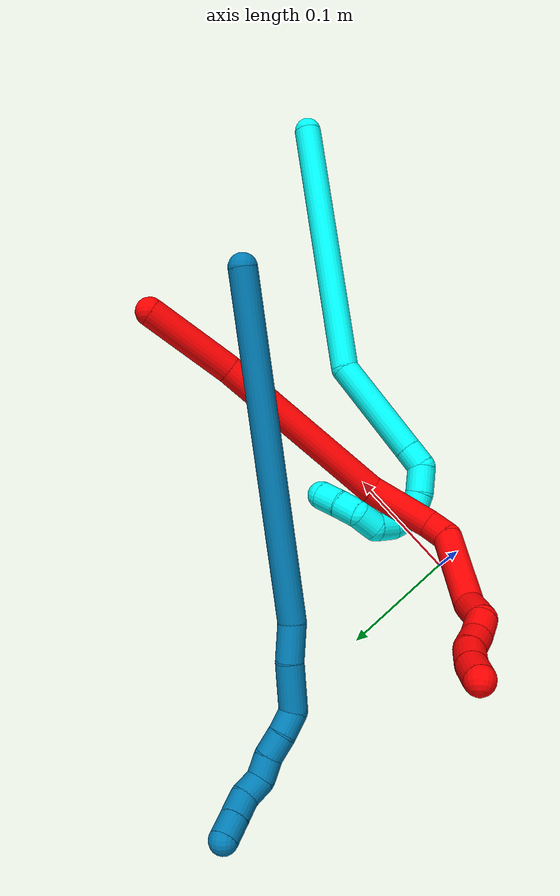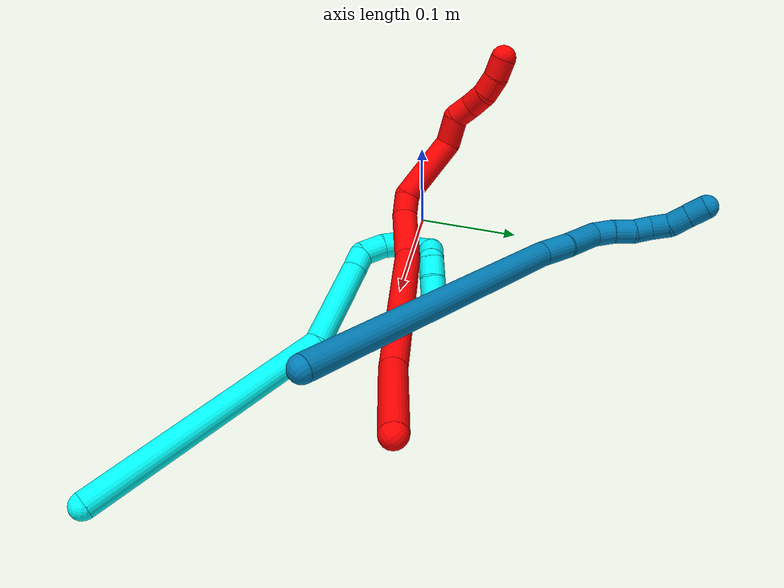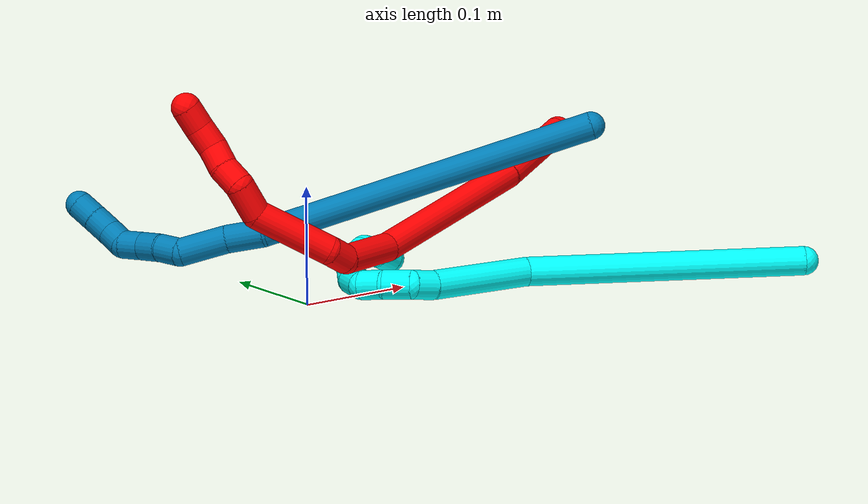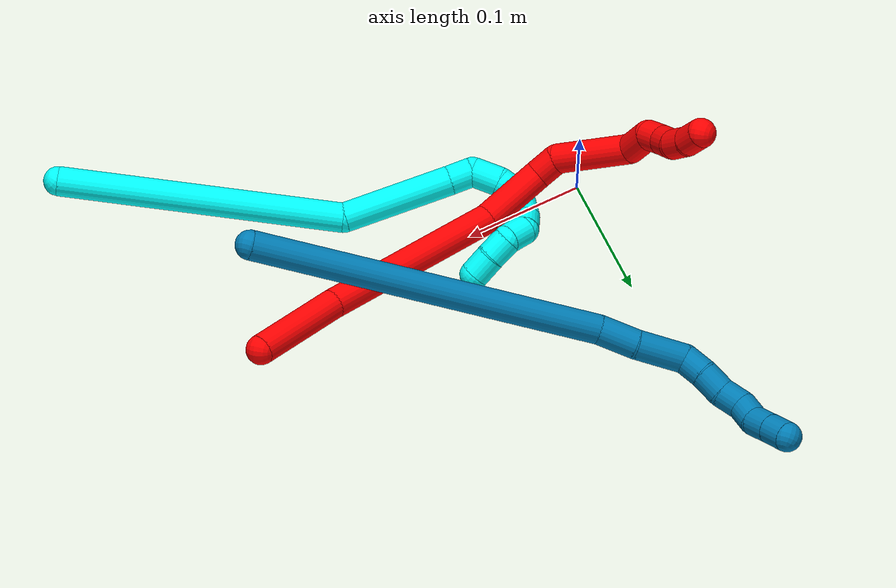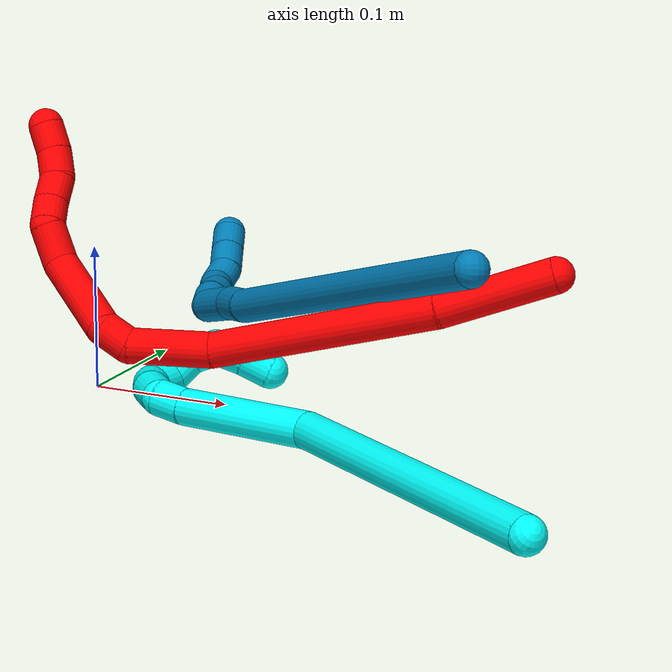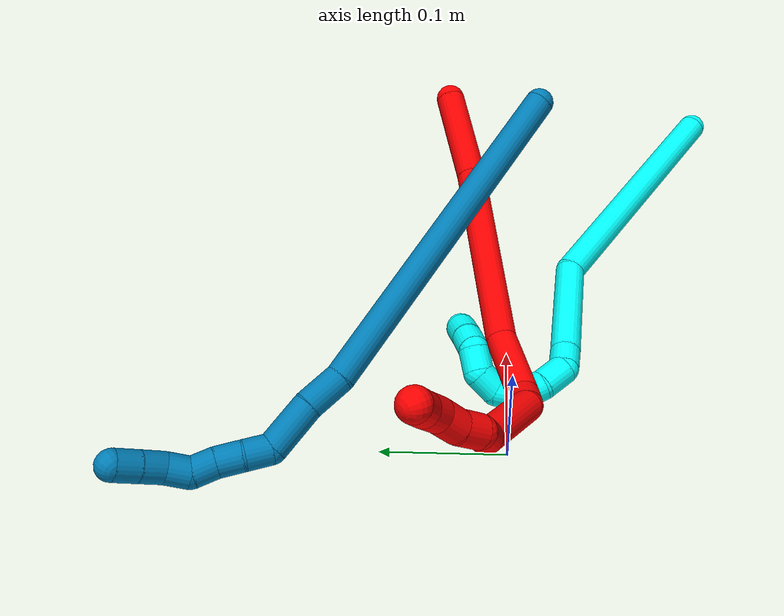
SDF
<sdf version="1.7">
 <world name="default">
  <model name="2">
   <static>0</static>
   <link name="2">
    <collision name="collision-cylinder-e_1_1_4">
     <pose>-0.0279 -0.027557 -0.011878 1.97777 -0.749013 -1.07707</pose>
     <geometry><cylinder><radius>0.0125</radius><length>0.081947</length></cylinder></geometry>
     <surface>
      <friction><ode><mu>1.16</mu><mu2>1.16</mu2><slip1>0</slip1><slip2>0</slip2></ode></friction>
      <contact><ode><kp>1e+06</kp><kd>1</kd><max_vel>0</max_vel><min_depth>0.001</min_depth></ode></contact>
     </surface>
    </collision>
    <visual name="visual-cylinder-e_1_1_4">
     <pose>-0.0279 -0.027557 -0.011878 1.97777 -0.749013 -1.07707</pose>
     <geometry><cylinder><radius>0.0125</radius><length>0.081947</length></cylinder></geometry>
     <material><ambient>1 0 0 1</ambient></material>
    </visual>
    <collision name="collision-cylinder-e_2_4_5">
     <pose>-0.110259 -0.104633 -0.056803 2.15926 -0.740907 -1.25607</pose>
     <geometry><cylinder><radius>0.0125</radius><length>0.161372</length></cylinder></geometry>
     <surface>
      <friction><ode><mu>1.16</mu><mu2>1.16</mu2><slip1>0</slip1><slip2>0</slip2></ode></friction>
      <contact><ode><kp>1e+06</kp><kd>1</kd><max_vel>0</max_vel><min_depth>0.001</min_depth></ode></contact>
     </surface>
    </collision>
    <visual name="visual-cylinder-e_2_4_5">
     <pose>-0.110259 -0.104633 -0.056803 2.15926 -0.740907 -1.25607</pose>
     <geometry><cylinder><radius>0.0125</radius><length>0.161372</length></cylinder></geometry>
     <material><ambient>1 0 0 1</ambient></material>
    </visual>
    <collision name="collision-cylinder-e_3_5_6">
     <pose>-0.188735 -0.165083 -0.101712 2.39711 -0.979389 -1.87712</pose>
     <geometry><cylinder><radius>0.0125</radius><length>0.05786</length></cylinder></geometry>
     <surface>
      <friction><ode><mu>1.16</mu><mu2>1.16</mu2><slip1>0</slip1><slip2>0</slip2></ode></friction>
      <contact><ode><kp>1e+06</kp><kd>1</kd><max_vel>0</max_vel><min_depth>0.001</min_depth></ode></contact>
     </surface>
    </collision>
    <visual name="visual-cylinder-e_3_5_6">
     <pose>-0.188735 -0.165083 -0.101712 2.39711 -0.979389 -1.87712</pose>
     <geometry><cylinder><radius>0.0125</radius><length>0.05786</length></cylinder></geometry>
     <material><ambient>1 0 0 1</ambient></material>
    </visual>
    <collision name="collision-cylinder-e_4_6_7">
     <pose>-0.220841 -0.174942 -0.120636 -2.99122 -0.847495 2.81065</pose>
     <geometry><cylinder><radius>0.0125</radius><length>0.021584</length></cylinder></geometry>
     <surface>
      <friction><ode><mu>1.16</mu><mu2>1.16</mu2><slip1>0</slip1><slip2>0</slip2></ode></friction>
      <contact><ode><kp>1e+06</kp><kd>1</kd><max_vel>0</max_vel><min_depth>0.001</min_depth></ode></contact>
     </surface>
    </collision>
    <visual name="visual-cylinder-e_4_6_7">
     <pose>-0.220841 -0.174942 -0.120636 -2.99122 -0.847495 2.81065</pose>
     <geometry><cylinder><radius>0.0125</radius><length>0.021584</length></cylinder></geometry>
     <material><ambient>1 0 0 1</ambient></material>
    </visual>
    <collision name="collision-cylinder-e_5_7_8">
     <pose>-0.238582 -0.170751 -0.160245 -3.04599 -0.287039 2.50224</pose>
     <geometry><cylinder><radius>0.0125</radius><length>0.068181</length></cylinder></geometry>
     <surface>
      <friction><ode><mu>1.16</mu><mu2>1.16</mu2><slip1>0</slip1><slip2>0</slip2></ode></friction>
      <contact><ode><kp>1e+06</kp><kd>1</kd><max_vel>0</max_vel><min_depth>0.001</min_depth></ode></contact>
     </surface>
    </collision>
    <visual name="visual-cylinder-e_5_7_8">
     <pose>-0.238582 -0.170751 -0.160245 -3.04599 -0.287039 2.50224</pose>
     <geometry><cylinder><radius>0.0125</radius><length>0.068181</length></cylinder></geometry>
     <material><ambient>1 0 0 1</ambient></material>
    </visual>
    <collision name="collision-cylinder-e_6_8_9">
     <pose>-0.25401 -0.159086 -0.202769 -2.43347 -0.414231 1.03383</pose>
     <geometry><cylinder><radius>0.0125</radius><length>0.0287</length></cylinder></geometry>
     <surface>
      <friction><ode><mu>1.16</mu><mu2>1.16</mu2><slip1>0</slip1><slip2>0</slip2></ode></friction>
      <contact><ode><kp>1e+06</kp><kd>1</kd><max_vel>0</max_vel><min_depth>0.001</min_depth></ode></contact>
     </surface>
    </collision>
    <visual name="visual-cylinder-e_6_8_9">
     <pose>-0.25401 -0.159086 -0.202769 -2.43347 -0.414231 1.03383</pose>
     <geometry><cylinder><radius>0.0125</radius><length>0.0287</length></cylinder></geometry>
     <material><ambient>1 0 0 1</ambient></material>
    </visual>
    <collision name="collision-cylinder-e_7_9_10">
     <pose>-0.258062 -0.146257 -0.221696 -2.69502 0.172028 -0.725832</pose>
     <geometry><cylinder><radius>0.0125</radius><length>0.020139</length></cylinder></geometry>
     <surface>
      <friction><ode><mu>1.16</mu><mu2>1.16</mu2><slip1>0</slip1><slip2>0</slip2></ode></friction>
      <contact><ode><kp>1e+06</kp><kd>1</kd><max_vel>0</max_vel><min_depth>0.001</min_depth></ode></contact>
     </surface>
    </collision>
    <visual name="visual-cylinder-e_7_9_10">
     <pose>-0.258062 -0.146257 -0.221696 -2.69502 0.172028 -0.725832</pose>
     <geometry><cylinder><radius>0.0125</radius><length>0.020139</length></cylinder></geometry>
     <material><ambient>1 0 0 1</ambient></material>
    </visual>
    <collision name="collision-cylinder-e_8_10_11">
     <pose>-0.25434 -0.135648 -0.238215 -2.44566 0.199815 -0.539251</pose>
     <geometry><cylinder><radius>0.0125</radius><length>0.020132</length></cylinder></geometry>
     <surface>
      <friction><ode><mu>1.16</mu><mu2>1.16</mu2><slip1>0</slip1><slip2>0</slip2></ode></friction>
      <contact><ode><kp>1e+06</kp><kd>1</kd><max_vel>0</max_vel><min_depth>0.001</min_depth></ode></contact>
     </surface>
    </collision>
    <visual name="visual-cylinder-e_8_10_11">
     <pose>-0.25434 -0.135648 -0.238215 -2.44566 0.199815 -0.539251</pose>
     <geometry><cylinder><radius>0.0125</radius><length>0.020132</length></cylinder></geometry>
     <material><ambient>1 0 0 1</ambient></material>
    </visual>
    <collision name="collision-cylinder-e_9_11_12">
     <pose>-0.253776 -0.12375 -0.253992 -2.54497 -0.143542 0.459375</pose>
     <geometry><cylinder><radius>0.0125</radius><length>0.020045</length></cylinder></geometry>
     <surface>
      <friction><ode><mu>1.16</mu><mu2>1.16</mu2><slip1>0</slip1><slip2>0</slip2></ode></friction>
      <contact><ode><kp>1e+06</kp><kd>1</kd><max_vel>0</max_vel><min_depth>0.001</min_depth></ode></contact>
     </surface>
    </collision>
    <visual name="visual-cylinder-e_9_11_12">
     <pose>-0.253776 -0.12375 -0.253992 -2.54497 -0.143542 0.459375</pose>
     <geometry><cylinder><radius>0.0125</radius><length>0.020045</length></cylinder></geometry>
     <material><ambient>1 0 0 1</ambient></material>
    </visual>
    <collision name="collision-cylinder-e_10_12_2">
     <pose>-0.258653 -0.112425 -0.269645 -2.48398 -0.350828 0.958193</pose>
     <geometry><cylinder><radius>0.0125</radius><length>0.020041</length></cylinder></geometry>
     <surface>
      <friction><ode><mu>1.16</mu><mu2>1.16</mu2><slip1>0</slip1><slip2>0</slip2></ode></friction>
      <contact><ode><kp>1e+06</kp><kd>1</kd><max_vel>0</max_vel><min_depth>0.001</min_depth></ode></contact>
     </surface>
    </collision>
    <visual name="visual-cylinder-e_10_12_2">
     <pose>-0.258653 -0.112425 -0.269645 -2.48398 -0.350828 0.958193</pose>
     <geometry><cylinder><radius>0.0125</radius><length>0.020041</length></cylinder></geometry>
     <material><ambient>1 0 0 1</ambient></material>
    </visual>
    <collision name="collision-sphere-2">
     <pose>-0.262097 -0.106673 -0.277093 0 -0 0</pose>
     <geometry><sphere><radius>0.0125</radius></sphere></geometry>
     <surface>
      <friction><ode><mu>1.16</mu><mu2>1.16</mu2><slip1>0</slip1><slip2>0</slip2></ode></friction>
      <contact><ode><kp>1e+06</kp><kd>1</kd><max_vel>0</max_vel><min_depth>0.001</min_depth></ode></contact>
     </surface>
    </collision>
    <visual name="visual-sphere-2">
     <pose>-0.262097 -0.106673 -0.277093 0 -0 0</pose>
     <geometry><sphere><radius>0.0125</radius></sphere></geometry>
     <material><ambient>1 0 0 1</ambient></material>
    </visual>
    <collision name="collision-sphere-12">
     <pose>-0.25521 -0.118177 -0.262197 0 -0 0</pose>
     <geometry><sphere><radius>0.0125</radius></sphere></geometry>
     <surface>
      <friction><ode><mu>1.16</mu><mu2>1.16</mu2><slip1>0</slip1><slip2>0</slip2></ode></friction>
      <contact><ode><kp>1e+06</kp><kd>1</kd><max_vel>0</max_vel><min_depth>0.001</min_depth></ode></contact>
     </surface>
    </collision>
    <visual name="visual-sphere-12">
     <pose>-0.25521 -0.118177 -0.262197 0 -0 0</pose>
     <geometry><sphere><radius>0.0125</radius></sphere></geometry>
     <material><ambient>1 0 0 1</ambient></material>
    </visual>
    <collision name="collision-sphere-11">
     <pose>-0.252342 -0.129323 -0.245786 0 -0 0</pose>
     <geometry><sphere><radius>0.0125</radius></sphere></geometry>
     <surface>
      <friction><ode><mu>1.16</mu><mu2>1.16</mu2><slip1>0</slip1><slip2>0</slip2></ode></friction>
      <contact><ode><kp>1e+06</kp><kd>1</kd><max_vel>0</max_vel><min_depth>0.001</min_depth></ode></contact>
     </surface>
    </collision>
    <visual name="visual-sphere-11">
     <pose>-0.252342 -0.129323 -0.245786 0 -0 0</pose>
     <geometry><sphere><radius>0.0125</radius></sphere></geometry>
     <material><ambient>1 0 0 1</ambient></material>
    </visual>
    <collision name="collision-sphere-10">
     <pose>-0.256338 -0.141973 -0.230643 0 -0 0</pose>
     <geometry><sphere><radius>0.0125</radius></sphere></geometry>
     <surface>
      <friction><ode><mu>1.16</mu><mu2>1.16</mu2><slip1>0</slip1><slip2>0</slip2></ode></friction>
      <contact><ode><kp>1e+06</kp><kd>1</kd><max_vel>0</max_vel><min_depth>0.001</min_depth></ode></contact>
     </surface>
    </collision>
    <visual name="visual-sphere-10">
     <pose>-0.256338 -0.141973 -0.230643 0 -0 0</pose>
     <geometry><sphere><radius>0.0125</radius></sphere></geometry>
     <material><ambient>1 0 0 1</ambient></material>
    </visual>
    <collision name="collision-sphere-9">
     <pose>-0.259785 -0.150542 -0.212748 0 -0 0</pose>
     <geometry><sphere><radius>0.0125</radius></sphere></geometry>
     <surface>
      <friction><ode><mu>1.16</mu><mu2>1.16</mu2><slip1>0</slip1><slip2>0</slip2></ode></friction>
      <contact><ode><kp>1e+06</kp><kd>1</kd><max_vel>0</max_vel><min_depth>0.001</min_depth></ode></contact>
     </surface>
    </collision>
    <visual name="visual-sphere-9">
     <pose>-0.259785 -0.150542 -0.212748 0 -0 0</pose>
     <geometry><sphere><radius>0.0125</radius></sphere></geometry>
     <material><ambient>1 0 0 1</ambient></material>
    </visual>
    <collision name="collision-sphere-4">
     <pose>-0.055799 -0.055113 -0.023756 0 -0 0</pose>
     <geometry><sphere><radius>0.0125</radius></sphere></geometry>
     <surface>
      <friction><ode><mu>1.16</mu><mu2>1.16</mu2><slip1>0</slip1><slip2>0</slip2></ode></friction>
      <contact><ode><kp>1e+06</kp><kd>1</kd><max_vel>0</max_vel><min_depth>0.001</min_depth></ode></contact>
     </surface>
    </collision>
    <visual name="visual-sphere-4">
     <pose>-0.055799 -0.055113 -0.023756 0 -0 0</pose>
     <geometry><sphere><radius>0.0125</radius></sphere></geometry>
     <material><ambient>1 0 0 1</ambient></material>
    </visual>
    <collision name="collision-sphere-1">
     <geometry><sphere><radius>0.0125</radius></sphere></geometry>
     <surface>
      <friction><ode><mu>1.16</mu><mu2>1.16</mu2><slip1>0</slip1><slip2>0</slip2></ode></friction>
      <contact><ode><kp>1e+06</kp><kd>1</kd><max_vel>0</max_vel><min_depth>0.001</min_depth></ode></contact>
     </surface>
    </collision>
    <visual name="visual-sphere-1">
     <geometry><sphere><radius>0.0125</radius></sphere></geometry>
     <material><ambient>1 0 0 1</ambient></material>
    </visual>
    <collision name="collision-sphere-8">
     <pose>-0.248234 -0.16763 -0.192791 0 -0 0</pose>
     <geometry><sphere><radius>0.0125</radius></sphere></geometry>
     <surface>
      <friction><ode><mu>1.16</mu><mu2>1.16</mu2><slip1>0</slip1><slip2>0</slip2></ode></friction>
      <contact><ode><kp>1e+06</kp><kd>1</kd><max_vel>0</max_vel><min_depth>0.001</min_depth></ode></contact>
     </surface>
    </collision>
    <visual name="visual-sphere-8">
     <pose>-0.248234 -0.16763 -0.192791 0 -0 0</pose>
     <geometry><sphere><radius>0.0125</radius></sphere></geometry>
     <material><ambient>1 0 0 1</ambient></material>
    </visual>
    <collision name="collision-sphere-5">
     <pose>-0.164718 -0.154154 -0.08985 0 -0 0</pose>
     <geometry><sphere><radius>0.0125</radius></sphere></geometry>
     <surface>
      <friction><ode><mu>1.16</mu><mu2>1.16</mu2><slip1>0</slip1><slip2>0</slip2></ode></friction>
      <contact><ode><kp>1e+06</kp><kd>1</kd><max_vel>0</max_vel><min_depth>0.001</min_depth></ode></contact>
     </surface>
    </collision>
    <visual name="visual-sphere-5">
     <pose>-0.164718 -0.154154 -0.08985 0 -0 0</pose>
     <geometry><sphere><radius>0.0125</radius></sphere></geometry>
     <material><ambient>1 0 0 1</ambient></material>
    </visual>
    <collision name="collision-sphere-6">
     <pose>-0.212751 -0.176012 -0.113574 0 -0 0</pose>
     <geometry><sphere><radius>0.0125</radius></sphere></geometry>
     <surface>
      <friction><ode><mu>1.16</mu><mu2>1.16</mu2><slip1>0</slip1><slip2>0</slip2></ode></friction>
      <contact><ode><kp>1e+06</kp><kd>1</kd><max_vel>0</max_vel><min_depth>0.001</min_depth></ode></contact>
     </surface>
    </collision>
    <visual name="visual-sphere-6">
     <pose>-0.212751 -0.176012 -0.113574 0 -0 0</pose>
     <geometry><sphere><radius>0.0125</radius></sphere></geometry>
     <material><ambient>1 0 0 1</ambient></material>
    </visual>
    <collision name="collision-sphere-7">
     <pose>-0.228931 -0.173872 -0.127698 0 -0 0</pose>
     <geometry><sphere><radius>0.0125</radius></sphere></geometry>
     <surface>
      <friction><ode><mu>1.16</mu><mu2>1.16</mu2><slip1>0</slip1><slip2>0</slip2></ode></friction>
      <contact><ode><kp>1e+06</kp><kd>1</kd><max_vel>0</max_vel><min_depth>0.001</min_depth></ode></contact>
     </surface>
    </collision>
    <visual name="visual-sphere-7">
     <pose>-0.228931 -0.173872 -0.127698 0 -0 0</pose>
     <geometry><sphere><radius>0.0125</radius></sphere></geometry>
     <material><ambient>1 0 0 1</ambient></material>
    </visual>
    <inertial>
     <pose>-0.159821 -0.118177 -0.110258 0 -0 0</pose>
     <mass>0.5</mass>
     <inertia>
      <ixx>-0.000215</ixx>
      <ixy>0</ixy>
      <ixz>0</ixz>
      <iyy>-9.8e-05</iyy>
      <iyz>0</iyz>
      <izz>0.000529</izz>
     </inertia>
    </inertial>
   </link>
   <pose>0.315631 0.052836 0.102913 1.92021 0.263843 0.833258</pose>
  </model>
  <model name="3">
   <static>0</static>
   <link name="3">
    <collision name="collision-cylinder-e_1_1_4">
     <pose>-0.059333 0.039546 -0.096728 -2.75349 -0.516394 1.8621</pose>
     <geometry><cylinder><radius>0.0125</radius><length>0.240338</length></cylinder></geometry>
     <surface>
      <friction><ode><mu>1.16</mu><mu2>1.16</mu2><slip1>0</slip1><slip2>0</slip2></ode></friction>
      <contact><ode><kp>1e+06</kp><kd>1</kd><max_vel>0</max_vel><min_depth>0.001</min_depth></ode></contact>
     </surface>
    </collision>
    <visual name="visual-cylinder-e_1_1_4">
     <pose>-0.059333 0.039546 -0.096728 -2.75349 -0.516394 1.8621</pose>
     <geometry><cylinder><radius>0.0125</radius><length>0.240338</length></cylinder></geometry>
     <material><ambient>0.003922 1 0.996078 1</ambient></material>
    </visual>
    <collision name="collision-cylinder-e_2_4_5">
     <pose>-0.154098 0.076052 -0.224626 3.04438 -0.846941 -2.92659</pose>
     <geometry><cylinder><radius>0.0125</radius><length>0.094578</length></cylinder></geometry>
     <surface>
      <friction><ode><mu>1.16</mu><mu2>1.16</mu2><slip1>0</slip1><slip2>0</slip2></ode></friction>
      <contact><ode><kp>1e+06</kp><kd>1</kd><max_vel>0</max_vel><min_depth>0.001</min_depth></ode></contact>
     </surface>
    </collision>
    <visual name="visual-cylinder-e_2_4_5">
     <pose>-0.154098 0.076052 -0.224626 3.04438 -0.846941 -2.92659</pose>
     <geometry><cylinder><radius>0.0125</radius><length>0.094578</length></cylinder></geometry>
     <material><ambient>0.003922 1 0.996078 1</ambient></material>
    </visual>
    <collision name="collision-cylinder-e_3_5_6">
     <pose>-0.197849 0.073395 -0.26177 -3.07773 -0.947132 3.01708</pose>
     <geometry><cylinder><radius>0.0125</radius><length>0.020499</length></cylinder></geometry>
     <surface>
      <friction><ode><mu>1.16</mu><mu2>1.16</mu2><slip1>0</slip1><slip2>0</slip2></ode></friction>
      <contact><ode><kp>1e+06</kp><kd>1</kd><max_vel>0</max_vel><min_depth>0.001</min_depth></ode></contact>
     </surface>
    </collision>
    <visual name="visual-cylinder-e_3_5_6">
     <pose>-0.197849 0.073395 -0.26177 -3.07773 -0.947132 3.01708</pose>
     <geometry><cylinder><radius>0.0125</radius><length>0.020499</length></cylinder></geometry>
     <material><ambient>0.003922 1 0.996078 1</ambient></material>
    </visual>
    <collision name="collision-cylinder-e_4_6_7">
     <pose>-0.210015 0.07979 -0.277556 -2.59176 -0.322499 1.04621</pose>
     <geometry><cylinder><radius>0.0125</radius><length>0.024268</length></cylinder></geometry>
     <surface>
      <friction><ode><mu>1.16</mu><mu2>1.16</mu2><slip1>0</slip1><slip2>0</slip2></ode></friction>
      <contact><ode><kp>1e+06</kp><kd>1</kd><max_vel>0</max_vel><min_depth>0.001</min_depth></ode></contact>
     </surface>
    </collision>
    <visual name="visual-cylinder-e_4_6_7">
     <pose>-0.210015 0.07979 -0.277556 -2.59176 -0.322499 1.04621</pose>
     <geometry><cylinder><radius>0.0125</radius><length>0.024268</length></cylinder></geometry>
     <material><ambient>0.003922 1 0.996078 1</ambient></material>
    </visual>
    <collision name="collision-cylinder-e_5_7_8">
     <pose>-0.214647 0.091779 -0.295388 -2.50121 -0.078482 0.235697</pose>
     <geometry><cylinder><radius>0.0125</radius><length>0.020064</length></cylinder></geometry>
     <surface>
      <friction><ode><mu>1.16</mu><mu2>1.16</mu2><slip1>0</slip1><slip2>0</slip2></ode></friction>
      <contact><ode><kp>1e+06</kp><kd>1</kd><max_vel>0</max_vel><min_depth>0.001</min_depth></ode></contact>
     </surface>
    </collision>
    <visual name="visual-cylinder-e_5_7_8">
     <pose>-0.214647 0.091779 -0.295388 -2.50121 -0.078482 0.235697</pose>
     <geometry><cylinder><radius>0.0125</radius><length>0.020064</length></cylinder></geometry>
     <material><ambient>0.003922 1 0.996078 1</ambient></material>
    </visual>
    <collision name="collision-cylinder-e_6_8_9">
     <pose>-0.211374 0.106343 -0.306845 -1.95152 0.413553 -0.601061</pose>
     <geometry><cylinder><radius>0.0125</radius><length>0.020205</length></cylinder></geometry>
     <surface>
      <friction><ode><mu>1.16</mu><mu2>1.16</mu2><slip1>0</slip1><slip2>0</slip2></ode></friction>
      <contact><ode><kp>1e+06</kp><kd>1</kd><max_vel>0</max_vel><min_depth>0.001</min_depth></ode></contact>
     </surface>
    </collision>
    <visual name="visual-cylinder-e_6_8_9">
     <pose>-0.211374 0.106343 -0.306845 -1.95152 0.413553 -0.601061</pose>
     <geometry><cylinder><radius>0.0125</radius><length>0.020205</length></cylinder></geometry>
     <material><ambient>0.003922 1 0.996078 1</ambient></material>
    </visual>
    <collision name="collision-cylinder-e_7_9_10">
     <pose>-0.20579 0.124477 -0.307705 -1.30711 0.152984 -0.117254</pose>
     <geometry><cylinder><radius>0.0125</radius><length>0.020008</length></cylinder></geometry>
     <surface>
      <friction><ode><mu>1.16</mu><mu2>1.16</mu2><slip1>0</slip1><slip2>0</slip2></ode></friction>
      <contact><ode><kp>1e+06</kp><kd>1</kd><max_vel>0</max_vel><min_depth>0.001</min_depth></ode></contact>
     </surface>
    </collision>
    <visual name="visual-cylinder-e_7_9_10">
     <pose>-0.20579 0.124477 -0.307705 -1.30711 0.152984 -0.117254</pose>
     <geometry><cylinder><radius>0.0125</radius><length>0.020008</length></cylinder></geometry>
     <material><ambient>0.003922 1 0.996078 1</ambient></material>
    </visual>
    <collision name="collision-cylinder-e_8_10_11">
     <pose>-0.199009 0.139217 -0.29837 -0.655389 0.552633 -0.192206</pose>
     <geometry><cylinder><radius>0.0125</radius><length>0.020029</length></cylinder></geometry>
     <surface>
      <friction><ode><mu>1.16</mu><mu2>1.16</mu2><slip1>0</slip1><slip2>0</slip2></ode></friction>
      <contact><ode><kp>1e+06</kp><kd>1</kd><max_vel>0</max_vel><min_depth>0.001</min_depth></ode></contact>
     </surface>
    </collision>
    <visual name="visual-cylinder-e_8_10_11">
     <pose>-0.199009 0.139217 -0.29837 -0.655389 0.552633 -0.192206</pose>
     <geometry><cylinder><radius>0.0125</radius><length>0.020029</length></cylinder></geometry>
     <material><ambient>0.003922 1 0.996078 1</ambient></material>
    </visual>
    <collision name="collision-cylinder-e_9_11_12">
     <pose>-0.184198 0.14627 -0.289303 -0.677501 1.26997 -0.507969</pose>
     <geometry><cylinder><radius>0.0125</radius><length>0.020007</length></cylinder></geometry>
     <surface>
      <friction><ode><mu>1.16</mu><mu2>1.16</mu2><slip1>0</slip1><slip2>0</slip2></ode></friction>
      <contact><ode><kp>1e+06</kp><kd>1</kd><max_vel>0</max_vel><min_depth>0.001</min_depth></ode></contact>
     </surface>
    </collision>
    <visual name="visual-cylinder-e_9_11_12">
     <pose>-0.184198 0.14627 -0.289303 -0.677501 1.26997 -0.507969</pose>
     <geometry><cylinder><radius>0.0125</radius><length>0.020007</length></cylinder></geometry>
     <material><ambient>0.003922 1 0.996078 1</ambient></material>
    </visual>
    <collision name="collision-cylinder-e_10_12_2">
     <pose>-0.164799 0.149229 -0.285603 -0.669433 1.39251 -0.565865</pose>
     <geometry><cylinder><radius>0.0125</radius><length>0.020006</length></cylinder></geometry>
     <surface>
      <friction><ode><mu>1.16</mu><mu2>1.16</mu2><slip1>0</slip1><slip2>0</slip2></ode></friction>
      <contact><ode><kp>1e+06</kp><kd>1</kd><max_vel>0</max_vel><min_depth>0.001</min_depth></ode></contact>
     </surface>
    </collision>
    <visual name="visual-cylinder-e_10_12_2">
     <pose>-0.164799 0.149229 -0.285603 -0.669433 1.39251 -0.565865</pose>
     <geometry><cylinder><radius>0.0125</radius><length>0.020006</length></cylinder></geometry>
     <material><ambient>0.003922 1 0.996078 1</ambient></material>
    </visual>
    <collision name="collision-sphere-2">
     <pose>-0.154955 0.15033 -0.284212 0 -0 0</pose>
     <geometry><sphere><radius>0.0125</radius></sphere></geometry>
     <surface>
      <friction><ode><mu>1.16</mu><mu2>1.16</mu2><slip1>0</slip1><slip2>0</slip2></ode></friction>
      <contact><ode><kp>1e+06</kp><kd>1</kd><max_vel>0</max_vel><min_depth>0.001</min_depth></ode></contact>
     </surface>
    </collision>
    <visual name="visual-sphere-2">
     <pose>-0.154955 0.15033 -0.284212 0 -0 0</pose>
     <geometry><sphere><radius>0.0125</radius></sphere></geometry>
     <material><ambient>0.003922 1 0.996078 1</ambient></material>
    </visual>
    <collision name="collision-sphere-12">
     <pose>-0.174644 0.148128 -0.286994 0 -0 0</pose>
     <geometry><sphere><radius>0.0125</radius></sphere></geometry>
     <surface>
      <friction><ode><mu>1.16</mu><mu2>1.16</mu2><slip1>0</slip1><slip2>0</slip2></ode></friction>
      <contact><ode><kp>1e+06</kp><kd>1</kd><max_vel>0</max_vel><min_depth>0.001</min_depth></ode></contact>
     </surface>
    </collision>
    <visual name="visual-sphere-12">
     <pose>-0.174644 0.148128 -0.286994 0 -0 0</pose>
     <geometry><sphere><radius>0.0125</radius></sphere></geometry>
     <material><ambient>0.003922 1 0.996078 1</ambient></material>
    </visual>
    <collision name="collision-sphere-11">
     <pose>-0.193752 0.144412 -0.291613 0 -0 0</pose>
     <geometry><sphere><radius>0.0125</radius></sphere></geometry>
     <surface>
      <friction><ode><mu>1.16</mu><mu2>1.16</mu2><slip1>0</slip1><slip2>0</slip2></ode></friction>
      <contact><ode><kp>1e+06</kp><kd>1</kd><max_vel>0</max_vel><min_depth>0.001</min_depth></ode></contact>
     </surface>
    </collision>
    <visual name="visual-sphere-11">
     <pose>-0.193752 0.144412 -0.291613 0 -0 0</pose>
     <geometry><sphere><radius>0.0125</radius></sphere></geometry>
     <material><ambient>0.003922 1 0.996078 1</ambient></material>
    </visual>
    <collision name="collision-sphere-10">
     <pose>-0.204265 0.134022 -0.305128 0 -0 0</pose>
     <geometry><sphere><radius>0.0125</radius></sphere></geometry>
     <surface>
      <friction><ode><mu>1.16</mu><mu2>1.16</mu2><slip1>0</slip1><slip2>0</slip2></ode></friction>
      <contact><ode><kp>1e+06</kp><kd>1</kd><max_vel>0</max_vel><min_depth>0.001</min_depth></ode></contact>
     </surface>
    </collision>
    <visual name="visual-sphere-10">
     <pose>-0.204265 0.134022 -0.305128 0 -0 0</pose>
     <geometry><sphere><radius>0.0125</radius></sphere></geometry>
     <material><ambient>0.003922 1 0.996078 1</ambient></material>
    </visual>
    <collision name="collision-sphere-9">
     <pose>-0.207314 0.114932 -0.310282 0 -0 0</pose>
     <geometry><sphere><radius>0.0125</radius></sphere></geometry>
     <surface>
      <friction><ode><mu>1.16</mu><mu2>1.16</mu2><slip1>0</slip1><slip2>0</slip2></ode></friction>
      <contact><ode><kp>1e+06</kp><kd>1</kd><max_vel>0</max_vel><min_depth>0.001</min_depth></ode></contact>
     </surface>
    </collision>
    <visual name="visual-sphere-9">
     <pose>-0.207314 0.114932 -0.310282 0 -0 0</pose>
     <geometry><sphere><radius>0.0125</radius></sphere></geometry>
     <material><ambient>0.003922 1 0.996078 1</ambient></material>
    </visual>
    <collision name="collision-sphere-4">
     <pose>-0.118666 0.079092 -0.193456 0 -0 0</pose>
     <geometry><sphere><radius>0.0125</radius></sphere></geometry>
     <surface>
      <friction><ode><mu>1.16</mu><mu2>1.16</mu2><slip1>0</slip1><slip2>0</slip2></ode></friction>
      <contact><ode><kp>1e+06</kp><kd>1</kd><max_vel>0</max_vel><min_depth>0.001</min_depth></ode></contact>
     </surface>
    </collision>
    <visual name="visual-sphere-4">
     <pose>-0.118666 0.079092 -0.193456 0 -0 0</pose>
     <geometry><sphere><radius>0.0125</radius></sphere></geometry>
     <material><ambient>0.003922 1 0.996078 1</ambient></material>
    </visual>
    <collision name="collision-sphere-1">
     <geometry><sphere><radius>0.0125</radius></sphere></geometry>
     <surface>
      <friction><ode><mu>1.16</mu><mu2>1.16</mu2><slip1>0</slip1><slip2>0</slip2></ode></friction>
      <contact><ode><kp>1e+06</kp><kd>1</kd><max_vel>0</max_vel><min_depth>0.001</min_depth></ode></contact>
     </surface>
    </collision>
    <visual name="visual-sphere-1">
     <geometry><sphere><radius>0.0125</radius></sphere></geometry>
     <material><ambient>0.003922 1 0.996078 1</ambient></material>
    </visual>
    <collision name="collision-sphere-8">
     <pose>-0.215434 0.097755 -0.303407 0 -0 0</pose>
     <geometry><sphere><radius>0.0125</radius></sphere></geometry>
     <surface>
      <friction><ode><mu>1.16</mu><mu2>1.16</mu2><slip1>0</slip1><slip2>0</slip2></ode></friction>
      <contact><ode><kp>1e+06</kp><kd>1</kd><max_vel>0</max_vel><min_depth>0.001</min_depth></ode></contact>
     </surface>
    </collision>
    <visual name="visual-sphere-8">
     <pose>-0.215434 0.097755 -0.303407 0 -0 0</pose>
     <geometry><sphere><radius>0.0125</radius></sphere></geometry>
     <material><ambient>0.003922 1 0.996078 1</ambient></material>
    </visual>
    <collision name="collision-sphere-5">
     <pose>-0.189529 0.073012 -0.255797 0 -0 0</pose>
     <geometry><sphere><radius>0.0125</radius></sphere></geometry>
     <surface>
      <friction><ode><mu>1.16</mu><mu2>1.16</mu2><slip1>0</slip1><slip2>0</slip2></ode></friction>
      <contact><ode><kp>1e+06</kp><kd>1</kd><max_vel>0</max_vel><min_depth>0.001</min_depth></ode></contact>
     </surface>
    </collision>
    <visual name="visual-sphere-5">
     <pose>-0.189529 0.073012 -0.255797 0 -0 0</pose>
     <geometry><sphere><radius>0.0125</radius></sphere></geometry>
     <material><ambient>0.003922 1 0.996078 1</ambient></material>
    </visual>
    <collision name="collision-sphere-6">
     <pose>-0.20617 0.073777 -0.267744 0 -0 0</pose>
     <geometry><sphere><radius>0.0125</radius></sphere></geometry>
     <surface>
      <friction><ode><mu>1.16</mu><mu2>1.16</mu2><slip1>0</slip1><slip2>0</slip2></ode></friction>
      <contact><ode><kp>1e+06</kp><kd>1</kd><max_vel>0</max_vel><min_depth>0.001</min_depth></ode></contact>
     </surface>
    </collision>
    <visual name="visual-sphere-6">
     <pose>-0.20617 0.073777 -0.267744 0 -0 0</pose>
     <geometry><sphere><radius>0.0125</radius></sphere></geometry>
     <material><ambient>0.003922 1 0.996078 1</ambient></material>
    </visual>
    <collision name="collision-sphere-7">
     <pose>-0.213861 0.085804 -0.287368 0 -0 0</pose>
     <geometry><sphere><radius>0.0125</radius></sphere></geometry>
     <surface>
      <friction><ode><mu>1.16</mu><mu2>1.16</mu2><slip1>0</slip1><slip2>0</slip2></ode></friction>
      <contact><ode><kp>1e+06</kp><kd>1</kd><max_vel>0</max_vel><min_depth>0.001</min_depth></ode></contact>
     </surface>
    </collision>
    <visual name="visual-sphere-7">
     <pose>-0.213861 0.085804 -0.287368 0 -0 0</pose>
     <geometry><sphere><radius>0.0125</radius></sphere></geometry>
     <material><ambient>0.003922 1 0.996078 1</ambient></material>
    </visual>
    <inertial>
     <pose>-0.123299 0.070638 -0.184708 0 -0 0</pose>
     <mass>0.5</mass>
     <inertia>
      <ixx>0.000616</ixx>
      <ixy>0</ixy>
      <ixz>0</ixz>
      <iyy>0.00157</iyy>
      <iyz>0</iyz>
      <izz>0.000222</izz>
     </inertia>
    </inertial>
   </link>
   <pose>0.388527 -0.190864 0.017038 0.722243 0.627272 0.304943</pose>
  </model>
  <model name="9">
   <static>0</static>
   <link name="9">
    <collision name="collision-cylinder-e_1_1_4">
     <pose>-0.110104 0.100355 -0.022087 -1.78743 -0.819901 0.991223</pose>
     <geometry><cylinder><radius>0.0125</radius><length>0.30121</length></cylinder></geometry>
     <surface>
      <friction><ode><mu>1.16</mu><mu2>1.16</mu2><slip1>0</slip1><slip2>0</slip2></ode></friction>
      <contact><ode><kp>1e+06</kp><kd>1</kd><max_vel>0</max_vel><min_depth>0.001</min_depth></ode></contact>
     </surface>
    </collision>
    <visual name="visual-cylinder-e_1_1_4">
     <pose>-0.110104 0.100355 -0.022087 -1.78743 -0.819901 0.991223</pose>
     <geometry><cylinder><radius>0.0125</radius><length>0.30121</length></cylinder></geometry>
     <material><ambient>0 0.490196 0.709804 1</ambient></material>
    </visual>
    <collision name="collision-cylinder-e_2_4_5">
     <pose>-0.233936 0.210144 -0.043557 -1.50549 -0.967704 0.914891</pose>
     <geometry><cylinder><radius>0.0125</radius><length>0.033336</length></cylinder></geometry>
     <surface>
      <friction><ode><mu>1.16</mu><mu2>1.16</mu2><slip1>0</slip1><slip2>0</slip2></ode></friction>
      <contact><ode><kp>1e+06</kp><kd>1</kd><max_vel>0</max_vel><min_depth>0.001</min_depth></ode></contact>
     </surface>
    </collision>
    <visual name="visual-cylinder-e_2_4_5">
     <pose>-0.233936 0.210144 -0.043557 -1.50549 -0.967704 0.914891</pose>
     <geometry><cylinder><radius>0.0125</radius><length>0.033336</length></cylinder></geometry>
     <material><ambient>0 0.490196 0.709804 1</ambient></material>
    </visual>
    <collision name="collision-cylinder-e_3_5_6">
     <pose>-0.263906 0.233366 -0.044842 -1.70785 -0.862274 0.971273</pose>
     <geometry><cylinder><radius>0.0125</radius><length>0.042782</length></cylinder></geometry>
     <surface>
      <friction><ode><mu>1.16</mu><mu2>1.16</mu2><slip1>0</slip1><slip2>0</slip2></ode></friction>
      <contact><ode><kp>1e+06</kp><kd>1</kd><max_vel>0</max_vel><min_depth>0.001</min_depth></ode></contact>
     </surface>
    </collision>
    <visual name="visual-cylinder-e_3_5_6">
     <pose>-0.263906 0.233366 -0.044842 -1.70785 -0.862274 0.971273</pose>
     <geometry><cylinder><radius>0.0125</radius><length>0.042782</length></cylinder></geometry>
     <material><ambient>0 0.490196 0.709804 1</ambient></material>
    </visual>
    <collision name="collision-cylinder-e_4_6_7">
     <pose>-0.289365 0.249888 -0.042478 -0.569809 -1.06817 0.343015</pose>
     <geometry><cylinder><radius>0.0125</radius><length>0.021035</length></cylinder></geometry>
     <surface>
      <friction><ode><mu>1.16</mu><mu2>1.16</mu2><slip1>0</slip1><slip2>0</slip2></ode></friction>
      <contact><ode><kp>1e+06</kp><kd>1</kd><max_vel>0</max_vel><min_depth>0.001</min_depth></ode></contact>
     </surface>
    </collision>
    <visual name="visual-cylinder-e_4_6_7">
     <pose>-0.289365 0.249888 -0.042478 -0.569809 -1.06817 0.343015</pose>
     <geometry><cylinder><radius>0.0125</radius><length>0.021035</length></cylinder></geometry>
     <material><ambient>0 0.490196 0.709804 1</ambient></material>
    </visual>
    <collision name="collision-cylinder-e_5_7_8">
     <pose>-0.307001 0.256427 -0.032907 -0.622282 -0.91121 0.312576</pose>
     <geometry><cylinder><radius>0.0125</radius><length>0.021308</length></cylinder></geometry>
     <surface>
      <friction><ode><mu>1.16</mu><mu2>1.16</mu2><slip1>0</slip1><slip2>0</slip2></ode></friction>
      <contact><ode><kp>1e+06</kp><kd>1</kd><max_vel>0</max_vel><min_depth>0.001</min_depth></ode></contact>
     </surface>
    </collision>
    <visual name="visual-cylinder-e_5_7_8">
     <pose>-0.307001 0.256427 -0.032907 -0.622282 -0.91121 0.312576</pose>
     <geometry><cylinder><radius>0.0125</radius><length>0.021308</length></cylinder></geometry>
     <material><ambient>0 0.490196 0.709804 1</ambient></material>
    </visual>
    <collision name="collision-cylinder-e_6_8_9">
     <pose>-0.324278 0.263928 -0.024688 -0.903039 -1.08245 0.567265</pose>
     <geometry><cylinder><radius>0.0125</radius><length>0.020061</length></cylinder></geometry>
     <surface>
      <friction><ode><mu>1.16</mu><mu2>1.16</mu2><slip1>0</slip1><slip2>0</slip2></ode></friction>
      <contact><ode><kp>1e+06</kp><kd>1</kd><max_vel>0</max_vel><min_depth>0.001</min_depth></ode></contact>
     </surface>
    </collision>
    <visual name="visual-cylinder-e_6_8_9">
     <pose>-0.324278 0.263928 -0.024688 -0.903039 -1.08245 0.567265</pose>
     <geometry><cylinder><radius>0.0125</radius><length>0.020061</length></cylinder></geometry>
     <material><ambient>0 0.490196 0.709804 1</ambient></material>
    </visual>
    <collision name="collision-cylinder-e_7_9_10">
     <pose>-0.341197 0.266329 -0.015883 0.216269 -0.928451 -0.108608</pose>
     <geometry><cylinder><radius>0.0125</radius><length>0.020135</length></cylinder></geometry>
     <surface>
      <friction><ode><mu>1.16</mu><mu2>1.16</mu2><slip1>0</slip1><slip2>0</slip2></ode></friction>
      <contact><ode><kp>1e+06</kp><kd>1</kd><max_vel>0</max_vel><min_depth>0.001</min_depth></ode></contact>
     </surface>
    </collision>
    <visual name="visual-cylinder-e_7_9_10">
     <pose>-0.341197 0.266329 -0.015883 0.216269 -0.928451 -0.108608</pose>
     <geometry><cylinder><radius>0.0125</radius><length>0.020135</length></cylinder></geometry>
     <material><ambient>0 0.490196 0.709804 1</ambient></material>
    </visual>
    <collision name="collision-cylinder-e_8_10_11">
     <pose>-0.358635 0.262779 -0.007157 0.671852 -1.20206 -0.469957</pose>
     <geometry><cylinder><radius>0.0125</radius><length>0.020104</length></cylinder></geometry>
     <surface>
      <friction><ode><mu>1.16</mu><mu2>1.16</mu2><slip1>0</slip1><slip2>0</slip2></ode></friction>
      <contact><ode><kp>1e+06</kp><kd>1</kd><max_vel>0</max_vel><min_depth>0.001</min_depth></ode></contact>
     </surface>
    </collision>
    <visual name="visual-cylinder-e_8_10_11">
     <pose>-0.358635 0.262779 -0.007157 0.671852 -1.20206 -0.469957</pose>
     <geometry><cylinder><radius>0.0125</radius><length>0.020104</length></cylinder></geometry>
     <material><ambient>0 0.490196 0.709804 1</ambient></material>
    </visual>
    <collision name="collision-cylinder-e_9_11_2">
     <pose>-0.377345 0.25841 -0.001371 0.621863 -1.20002 -0.432827</pose>
     <geometry><cylinder><radius>0.0125</radius><length>0.020029</length></cylinder></geometry>
     <surface>
      <friction><ode><mu>1.16</mu><mu2>1.16</mu2><slip1>0</slip1><slip2>0</slip2></ode></friction>
      <contact><ode><kp>1e+06</kp><kd>1</kd><max_vel>0</max_vel><min_depth>0.001</min_depth></ode></contact>
     </surface>
    </collision>
    <visual name="visual-cylinder-e_9_11_2">
     <pose>-0.377345 0.25841 -0.001371 0.621863 -1.20002 -0.432827</pose>
     <geometry><cylinder><radius>0.0125</radius><length>0.020029</length></cylinder></geometry>
     <material><ambient>0 0.490196 0.709804 1</ambient></material>
    </visual>
    <collision name="collision-sphere-2">
     <pose>-0.386679 0.256296 0.001578 0 -0 0</pose>
     <geometry><sphere><radius>0.0125</radius></sphere></geometry>
     <surface>
      <friction><ode><mu>1.16</mu><mu2>1.16</mu2><slip1>0</slip1><slip2>0</slip2></ode></friction>
      <contact><ode><kp>1e+06</kp><kd>1</kd><max_vel>0</max_vel><min_depth>0.001</min_depth></ode></contact>
     </surface>
    </collision>
    <visual name="visual-sphere-2">
     <pose>-0.386679 0.256296 0.001578 0 -0 0</pose>
     <geometry><sphere><radius>0.0125</radius></sphere></geometry>
     <material><ambient>0 0.490196 0.709804 1</ambient></material>
    </visual>
    <collision name="collision-sphere-11">
     <pose>-0.368011 0.260524 -0.004321 0 -0 0</pose>
     <geometry><sphere><radius>0.0125</radius></sphere></geometry>
     <surface>
      <friction><ode><mu>1.16</mu><mu2>1.16</mu2><slip1>0</slip1><slip2>0</slip2></ode></friction>
      <contact><ode><kp>1e+06</kp><kd>1</kd><max_vel>0</max_vel><min_depth>0.001</min_depth></ode></contact>
     </surface>
    </collision>
    <visual name="visual-sphere-11">
     <pose>-0.368011 0.260524 -0.004321 0 -0 0</pose>
     <geometry><sphere><radius>0.0125</radius></sphere></geometry>
     <material><ambient>0 0.490196 0.709804 1</ambient></material>
    </visual>
    <collision name="collision-sphere-10">
     <pose>-0.349258 0.265034 -0.009992 0 -0 0</pose>
     <geometry><sphere><radius>0.0125</radius></sphere></geometry>
     <surface>
      <friction><ode><mu>1.16</mu><mu2>1.16</mu2><slip1>0</slip1><slip2>0</slip2></ode></friction>
      <contact><ode><kp>1e+06</kp><kd>1</kd><max_vel>0</max_vel><min_depth>0.001</min_depth></ode></contact>
     </surface>
    </collision>
    <visual name="visual-sphere-10">
     <pose>-0.349258 0.265034 -0.009992 0 -0 0</pose>
     <geometry><sphere><radius>0.0125</radius></sphere></geometry>
     <material><ambient>0 0.490196 0.709804 1</ambient></material>
    </visual>
    <collision name="collision-sphere-9">
     <pose>-0.333136 0.267623 -0.021774 0 -0 0</pose>
     <geometry><sphere><radius>0.0125</radius></sphere></geometry>
     <surface>
      <friction><ode><mu>1.16</mu><mu2>1.16</mu2><slip1>0</slip1><slip2>0</slip2></ode></friction>
      <contact><ode><kp>1e+06</kp><kd>1</kd><max_vel>0</max_vel><min_depth>0.001</min_depth></ode></contact>
     </surface>
    </collision>
    <visual name="visual-sphere-9">
     <pose>-0.333136 0.267623 -0.021774 0 -0 0</pose>
     <geometry><sphere><radius>0.0125</radius></sphere></geometry>
     <material><ambient>0 0.490196 0.709804 1</ambient></material>
    </visual>
    <collision name="collision-sphere-4">
     <pose>-0.220208 0.20071 -0.044174 0 -0 0</pose>
     <geometry><sphere><radius>0.0125</radius></sphere></geometry>
     <surface>
      <friction><ode><mu>1.16</mu><mu2>1.16</mu2><slip1>0</slip1><slip2>0</slip2></ode></friction>
      <contact><ode><kp>1e+06</kp><kd>1</kd><max_vel>0</max_vel><min_depth>0.001</min_depth></ode></contact>
     </surface>
    </collision>
    <visual name="visual-sphere-4">
     <pose>-0.220208 0.20071 -0.044174 0 -0 0</pose>
     <geometry><sphere><radius>0.0125</radius></sphere></geometry>
     <material><ambient>0 0.490196 0.709804 1</ambient></material>
    </visual>
    <collision name="collision-sphere-1">
     <geometry><sphere><radius>0.0125</radius></sphere></geometry>
     <surface>
      <friction><ode><mu>1.16</mu><mu2>1.16</mu2><slip1>0</slip1><slip2>0</slip2></ode></friction>
      <contact><ode><kp>1e+06</kp><kd>1</kd><max_vel>0</max_vel><min_depth>0.001</min_depth></ode></contact>
     </surface>
    </collision>
    <visual name="visual-sphere-1">
     <geometry><sphere><radius>0.0125</radius></sphere></geometry>
     <material><ambient>0 0.490196 0.709804 1</ambient></material>
    </visual>
    <collision name="collision-sphere-8">
     <pose>-0.31542 0.260233 -0.027602 0 -0 0</pose>
     <geometry><sphere><radius>0.0125</radius></sphere></geometry>
     <surface>
      <friction><ode><mu>1.16</mu><mu2>1.16</mu2><slip1>0</slip1><slip2>0</slip2></ode></friction>
      <contact><ode><kp>1e+06</kp><kd>1</kd><max_vel>0</max_vel><min_depth>0.001</min_depth></ode></contact>
     </surface>
    </collision>
    <visual name="visual-sphere-8">
     <pose>-0.31542 0.260233 -0.027602 0 -0 0</pose>
     <geometry><sphere><radius>0.0125</radius></sphere></geometry>
     <material><ambient>0 0.490196 0.709804 1</ambient></material>
    </visual>
    <collision name="collision-sphere-5">
     <pose>-0.247663 0.219578 -0.04294 0 -0 0</pose>
     <geometry><sphere><radius>0.0125</radius></sphere></geometry>
     <surface>
      <friction><ode><mu>1.16</mu><mu2>1.16</mu2><slip1>0</slip1><slip2>0</slip2></ode></friction>
      <contact><ode><kp>1e+06</kp><kd>1</kd><max_vel>0</max_vel><min_depth>0.001</min_depth></ode></contact>
     </surface>
    </collision>
    <visual name="visual-sphere-5">
     <pose>-0.247663 0.219578 -0.04294 0 -0 0</pose>
     <geometry><sphere><radius>0.0125</radius></sphere></geometry>
     <material><ambient>0 0.490196 0.709804 1</ambient></material>
    </visual>
    <collision name="collision-sphere-6">
     <pose>-0.280148 0.247155 -0.046744 0 -0 0</pose>
     <geometry><sphere><radius>0.0125</radius></sphere></geometry>
     <surface>
      <friction><ode><mu>1.16</mu><mu2>1.16</mu2><slip1>0</slip1><slip2>0</slip2></ode></friction>
      <contact><ode><kp>1e+06</kp><kd>1</kd><max_vel>0</max_vel><min_depth>0.001</min_depth></ode></contact>
     </surface>
    </collision>
    <visual name="visual-sphere-6">
     <pose>-0.280148 0.247155 -0.046744 0 -0 0</pose>
     <geometry><sphere><radius>0.0125</radius></sphere></geometry>
     <material><ambient>0 0.490196 0.709804 1</ambient></material>
    </visual>
    <collision name="collision-sphere-7">
     <pose>-0.298582 0.252622 -0.038211 0 -0 0</pose>
     <geometry><sphere><radius>0.0125</radius></sphere></geometry>
     <surface>
      <friction><ode><mu>1.16</mu><mu2>1.16</mu2><slip1>0</slip1><slip2>0</slip2></ode></friction>
      <contact><ode><kp>1e+06</kp><kd>1</kd><max_vel>0</max_vel><min_depth>0.001</min_depth></ode></contact>
     </surface>
    </collision>
    <visual name="visual-sphere-7">
     <pose>-0.298582 0.252622 -0.038211 0 -0 0</pose>
     <geometry><sphere><radius>0.0125</radius></sphere></geometry>
     <material><ambient>0 0.490196 0.709804 1</ambient></material>
    </visual>
    <inertial>
     <pose>-0.18605 0.158107 -0.025209 0 -0 0</pose>
     <mass>0.5</mass>
     <inertia>
      <ixx>0.002147</ixx>
      <ixy>0</ixy>
      <ixz>0</ixz>
      <iyy>0.002448</iyy>
      <iyz>0</iyz>
      <izz>0.000158</izz>
     </inertia>
    </inertial>
   </link>
   <pose>0.286933 -0.026272 0.122247 -1.67537 0.408247 -0.815268</pose>
  </model>
 </world>
</sdf>
